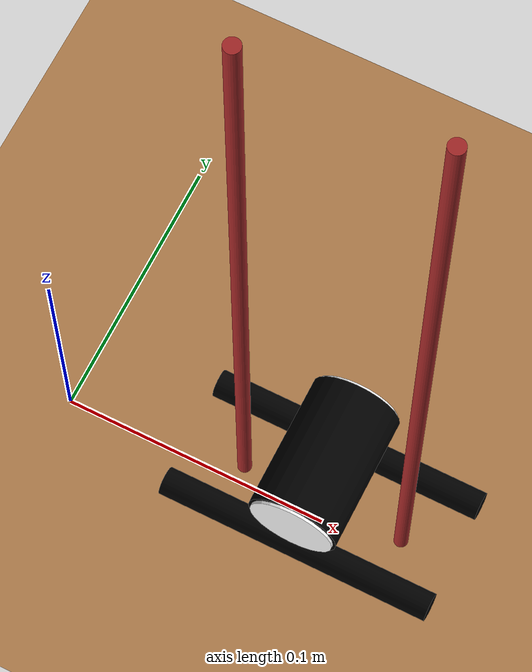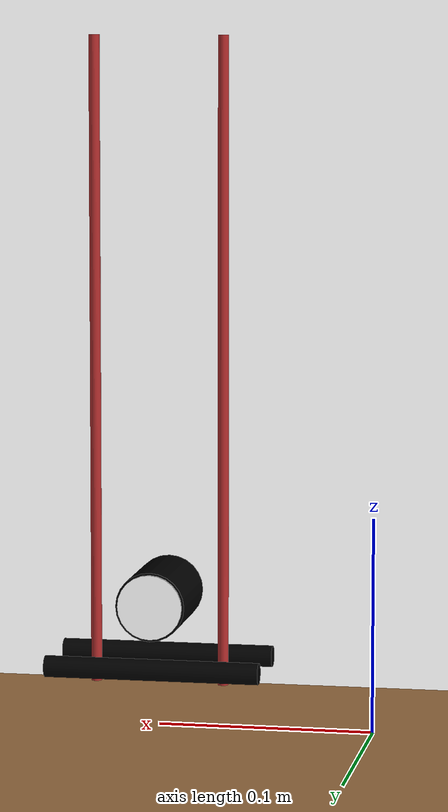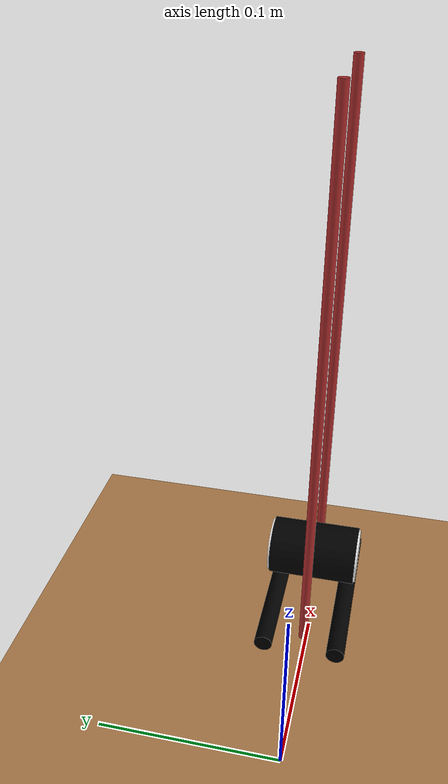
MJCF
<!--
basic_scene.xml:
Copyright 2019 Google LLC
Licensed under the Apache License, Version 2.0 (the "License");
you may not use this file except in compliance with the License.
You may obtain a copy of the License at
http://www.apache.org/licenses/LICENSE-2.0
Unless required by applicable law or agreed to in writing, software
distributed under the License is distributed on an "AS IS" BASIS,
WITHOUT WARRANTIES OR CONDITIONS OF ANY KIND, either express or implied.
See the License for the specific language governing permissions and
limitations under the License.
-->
<mujoco model='chopsticks'>
    <include file='../scenes/basic_scene.xml'/>
    <compiler angle="radian"/>
    <default>
        <default class="slide">
            <position kp="20" ctrllimited="true"/>
            <!-- "armature" is rotor inertia and said to improve stability and physical accuracy? -->
            <!-- damping and armature values are arbitrary -->
            <joint type="slide" limited="true" damping=".5" armature="0.001"/>
        </default>
        <default class="hinge">
            <position kp="10" ctrllimited="true"/>
            <joint type="hinge" limited="true" damping=".5" armature="0.001"/>
        </default>
    </default>

    <worldbody>
        <!-- change pos to 0 0 0.35 if you want to avoid the chopstick being positioned right above the object -->
        <body pos="0.07 0 0.32" name="cs0">
            <!-- one half of chopstick -->
            <geom name="cs0" type="cylinder" size="0.0025 0.15" pos="0 0 -0.15" rgba="0.65 0.16 0.16 1"/>
            <joint name="cs0_x" axis="1 0 0" range="-0.1 0.1" class="slide"/>
            <joint name="cs0_z" axis="0 0 1" range="-0.1 0.1" class="slide"/>
            <joint name="cs0_rot" axis="0 1 0" range="-.3 .3" class="hinge"/>
            <body name="cs1" pos="0.03 0 0">
                <!-- other half of chopstick -->
                <!-- set position so that hinge joint is in middle of two sticks -->
                <geom name="cs1" type="cylinder" size="0.0025 0.15" pos="0.03 0 -0.15" rgba="0.65 0.16 0.16 1"/>
                <!-- limit the range to what is feasible for chopsticks -->
                <joint name="cs1_x" axis="1 0 0" range="-0.07 0." class="slide"/>
                <joint name="cs1_rot" axis="0 1 0" range="0. 0.2" class="hinge"/>
            </body>
        </body>

        <!-- create objects to be picked up -->
        <body name="obj_A" pos="0.1 0 0.06">
            <!-- hack-ish way to make it easier to pick up: make it super light -->
            <geom type="cylinder" size="0.015" fromto="0. 0.025 0. 0. -0.025 0." rgba="1 1 1 1" mass="0.005"/>
            <geom name="obj_A" type="cylinder" size="0.016" fromto="0. 0.024 0. 0. -0.024 0." rgba="0 0 0 1" mass="0.001"/>
            <joint name="obj_A_x" type="slide" axis="1 0 0" limited="false"/>
            <joint name="obj_A_z" type="slide" axis="0 0 1" limited="false"/>
            <joint name="obj_A_rot" type="hinge" axis="0 1 0" limited="false"/>
        </body>

        <!-- for keeping object at certain height -->
        <body name="rail_pY">
            <geom type="cylinder" size="0.005" fromto="0.05 0.02 0.03 0.15 0.02 0.03" rgba="0 0 0 1" />
        </body>
        <body name="rail_nY">
            <geom type="cylinder" size="0.005" fromto="0.05 -0.02 0.03 0.15 -0.02 0.03" rgba="0 0 0 1" />
        </body>

    </worldbody>

    <actuator>
        <!-- copy over the joint range to ctrlrange here -->
        <position name="cs0_x" joint="cs0_x" class="slide" ctrlrange="-0.1 0.1"/>
        <position name="cs0_z" joint="cs0_z" class="slide" ctrlrange="-0.1 0.1"/>
        <position name="cs0_rot" joint="cs0_rot" class="hinge" ctrlrange="-.3 .3"/>
        <position name="cs1_x" joint="cs1_x" class="slide" ctrlrange="-0.07 0."/>
        <position name="cs1_rot" joint="cs1_rot" class="hinge" ctrlrange="-0. 0.2"/>
    </actuator>

    <contact>
        <!-- try to increase friction for chopstick-object contact (not sure how well it works) -->
        <pair geom1="cs0" geom2="obj_A" friction="10 10"/>
        <pair geom1="cs1" geom2="obj_A" friction="10 10"/>
    </contact>
</mujoco>

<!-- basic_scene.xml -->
<mujocoinclude>
    <asset>
        <texture name="skybox" type="skybox" builtin="gradient" rgb1=".08 .09 .10" rgb2="0 0 0"
               width="800" height="800" mark="random" markrgb=".8 .8 .8"/>
        <texture name="texplane" type="2d" height="1" width="1" file="../scenes/textures/wood.png" />
        <material name='MatPlane' reflectance='0.05' texture="texplane" texrepeat="4 4" texuniform="true"/>
    </asset>

    <visual>
        <map fogstart="1.5" fogend="5" force="0.1" znear="0.1"/>
        <quality shadowsize="4096" offsamples="4"/>
    </visual>

    <worldbody>
        <light directional='true' diffuse='.3 .3 .3' specular='0.3 0.3 0.3' pos='-1 -1 1' dir='1 1 -1'/>
        <light directional='true' diffuse='.3 .3 .3' specular='0.3 0.3 0.3' pos='1 -1 1' dir='-1 1 -1'/>
        <light directional='true' diffuse='.3 .3 .3' specular='0.3 0.3 0.3' pos='0 1 1' dir='0 -1 -1'/>
        <geom name='floor' pos='0 0 0' size='5 5 .1' conaffinity='1' contype='1' type='plane' material='MatPlane' condim='3'/>
        <site name='xaxis' pos='.5 0 0' size='.005 .5' type='capsule' rgba='1 0 0 .25' euler='0 1.57 0' group='3'/>
        <site name='yaxis' pos='0 .5 0' size='.005 .5' type='capsule' rgba='0 1 0 .25' euler='1.57 0 0' group='3'/>
    </worldbody>
</mujocoinclude>
